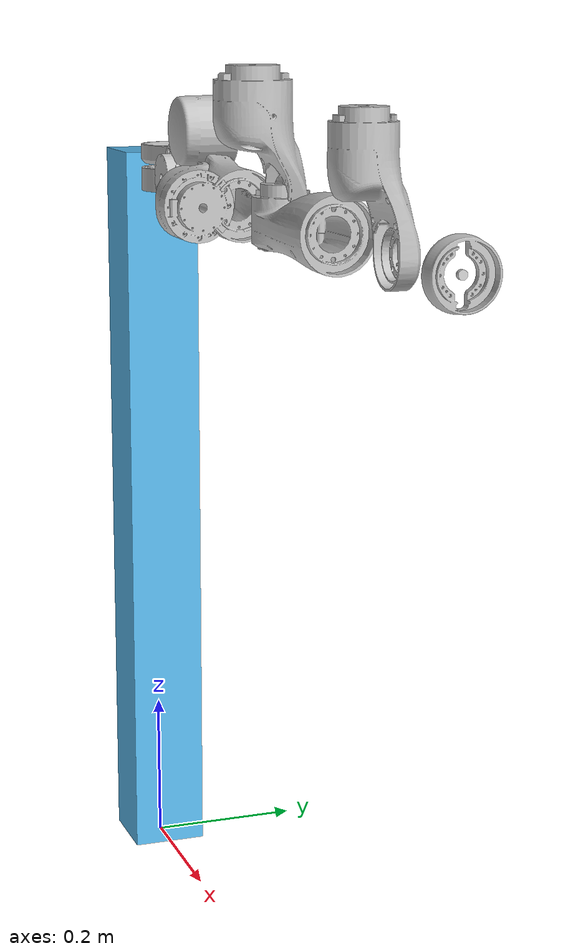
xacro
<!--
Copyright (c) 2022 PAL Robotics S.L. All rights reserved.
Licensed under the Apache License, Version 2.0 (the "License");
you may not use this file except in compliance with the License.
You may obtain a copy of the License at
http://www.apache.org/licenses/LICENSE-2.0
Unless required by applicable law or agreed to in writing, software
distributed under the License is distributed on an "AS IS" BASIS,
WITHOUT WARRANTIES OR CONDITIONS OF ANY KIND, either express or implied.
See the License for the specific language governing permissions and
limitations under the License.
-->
<?xml version="1.0" encoding="UTF-8"?>

<robot xmlns:xacro="http://ros.org/wiki/xacro" name="tiago_sea_arm">
  <xacro:include filename="$(find tiago_sea_arm_description)/urdf/arm/arm.urdf.xacro"/>
  <xacro:include filename="$(find tiago_sea_arm_description)/urdf/end_effector/end_effector.urdf.xacro"/>
  <xacro:include filename="$(find tiago_sea_arm_description)/urdf/sensors/ft_sensor.urdf.xacro" />
  <!-- Materials for visualization -->
  <xacro:include filename="$(find tiago_sea_arm_description)/urdf/materials.urdf.xacro" />

  <xacro:arg name="end_effector" default="false"/>
  <xacro:arg name="ft_sensor" default="false"/>
  <xacro:property name="end_effector" value="$(arg end_effector)" />
  <xacro:property name="ft_sensor" value="$(arg ft_sensor)" />

  <xacro:if value="${end_effector not in ['false', False, 'pal-pro-gripper']}">
    <xacro:wrong_end_effector/>
  </xacro:if>
  <xacro:if value="${ft_sensor not in ['false', False, 'rokubi']}">
    <xacro:wrong_ft_sensor/>
  </xacro:if>

  <xacro:property name="has_ft_sensor"           value="${ft_sensor in ['rokubi']}"/>
  <xacro:property name="has_end_effector"        value="${end_effector not in ['false', False, 'no-ee']}"/>
  <xacro:property name="end_effector_link"       value="${'arm_ft_tool_link' if has_ft_sensor else 'arm_tool_link'}"/>

  <link name="world"/>

  <joint name="world_fixed" type="fixed">
      <origin xyz="0 0 0" rpy="0 0 0"/>
      <parent link="world"/>
      <child link="arm_root_link"/>
  </joint>

  <link name="arm_root_link">
      <visual>
          <origin xyz="0 0 0.5" rpy="0 0 0"/>
          <geometry>
              <box size="0.1 0.1 1.0"/>
          </geometry>
      </visual>
      <collision>
          <origin xyz="0 0 0.5" rpy="0 0 0"/>
          <geometry>
              <box size="0.1 0.1 1.0"/>
          </geometry>
      </collision>
      <inertial>
          <mass value="1e2" />
          <origin xyz="0.0 0.0 0.0" />
          <inertia ixx = "0.000001" ixy = "0.000000" ixz = "0.000000"
                   iyx = "0.000000" iyy = "0.000001" iyz = "0.000000"
                   izx = "0.000000" izy = "0.000000" izz = "0.000001" />
      </inertial>
  </link>

  <!-- Generic simulator_gazebo plugins -->
  <xacro:include filename="$(find tiago_sea_arm_description)/gazebo/gazebo.urdf.xacro" />

  <xacro:property name="joint_limit_folder" value="tiago_sea_arm_description"/>

  <!-- ARM -->
  <xacro:tiago_sea_arm name="arm" parent="arm_root_link" reflect="1" ft_sensor="${ft_sensor}" arm_1_offset="0" arm_2_offset="0" arm_3_offset="0" arm_4_offset="0" arm_5_offset="0" arm_6_offset="0" arm_7_offset="0" joint_limit_folder="${joint_limit_folder}">
          <origin xyz="0.11 0 1.0" rpy="0 0 0"/>
  </xacro:tiago_sea_arm>

  <xacro:tiago_sea_arm_end_effector name="gripper" parent="${end_effector_link}" type="${end_effector}" has_end_effector="${has_end_effector}" reflect="1"/>

  <xacro:if value="${has_ft_sensor}">
    <xacro:ft_sensor name="arm" parent="arm_tool_link"/>
  </xacro:if>

</robot>

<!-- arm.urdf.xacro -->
<robot xmlns:xacro="http://ros.org/wiki/xacro">

  <!-- File includes -->
  <xacro:include filename="$(find tiago_sea_arm_description)/urdf/deg_to_rad.xacro" />
  <xacro:include filename="$(find tiago_sea_arm_description)/urdf/arm/arm.transmission.xacro" />
  <xacro:include filename="$(find tiago_sea_arm_description)/urdf/arm/arm.limits.xacro" />
  <xacro:include filename="$(find tiago_sea_arm_description)/urdf/calibration_constants.urdf.xacro" />
  <!-- Constants -->

  <!-- ARM MACRO -->
  <!-- reflect: Set to 1 for a right arm, or to -1 for a left arm -->
  <xacro:macro name="tiago_sea_arm"
    params="name parent *origin reflect ft_sensor arm_1_offset arm_2_offset arm_3_offset arm_4_offset arm_5_offset arm_6_offset arm_7_offset no_safety_eps:=False joint_limit_folder:=tiago_sea_arm_description" >
    <xacro:property name="arm_eps" value="${0.00 if no_safety_eps else 0.07}" />

    <!-- TODO -->
    <!-- If joint limits between left and right arm will differ a change has to be made -->
    <xacro:include filename="$(find ${joint_limit_folder})/urdf/arm/arm.limits.xacro" />

    <!-- BASE LINK -->
    <link name="${name}_base_link">
      <inertial>
        <origin xyz="3.2799E-03 -3.2628E-04 -0.0322" rpy="0 0 0" />
        <mass value="0.8021" />
        <inertia
          ixx="5.3024E-04" ixy="-5.9227E-06" ixz="-1.0828E-06"
          iyy="5.5663E-04" iyz="-5.7113E-06"
          izz="6.8971E-04" />
      </inertial>
      <visual>
        <origin xyz="0 0 0" rpy="0 0 0" />
        <geometry>
          <mesh filename="package://tiago_sea_arm_description/meshes/base_link.STL" />
        </geometry>
        <material name="">
          <color rgba="0.75294 0.75294 0.75294 1" />
        </material>
      </visual>
      <collision>
        <origin xyz="0 0 0" rpy="0 0 0" />
        <geometry>
          <mesh filename="package://tiago_sea_arm_description/meshes/base_link.STL" />
        </geometry>
      </collision>
    </link>

    <joint name="${name}_base_joint" type="fixed">
      <xacro:insert_block name="origin" />
      <parent link="${parent}" />
      <child link="${name}_base_link" />
    </joint>

    <!-- Arm link macro -->
    <link name="${name}_1_link">
      <inertial>
        <origin xyz="0.1082 0.0106 ${0.0328 * reflect}" rpy="0 0 0" />
        <mass value="1.0267" />
      <inertia
        ixx="8.0603E-04" ixy="-8.52034E-05" ixz="${-3.0124E-04 * reflect}"
        iyy="1.9301E-03" iyz="${1.9426E-05 * reflect}"
        izz="1.8484E-03" />
      </inertial>
      <visual>
        <origin xyz="0 0 0" rpy="0 0 0" />
        <geometry>
          <mesh filename="package://tiago_sea_arm_description/meshes/arm/arm_1_link.STL"
            scale="1 1 ${reflect}" />
        </geometry>
        <material
          name="">
          <color
            rgba="0.752941176470588 0.752941176470588 0.752941176470588 1" />
        </material>
      </visual>
      <collision>
        <origin xyz="0 0 0" rpy="0 0 0" />
        <geometry>
          <mesh
            filename="package://tiago_sea_arm_description/meshes/arm/arm_1_link_convex.STL"
            scale="1 1 ${reflect}" />
        </geometry>
      </collision>
    </link>

    <joint name="${name}_1_joint" type="revolute">
      <origin xyz="0.0 0.0 0.0" rpy=" ${(90 + 90 * reflect) * deg_to_rad } 0 0" />
      <parent link="${name}_base_link" />
      <child link="${name}_1_link" />
      <axis xyz="0 0 ${1}" />
      <limit lower="${arm_1_joint_lb * deg_to_rad}" upper="${arm_1_joint_ub * deg_to_rad}" effort="${arm_1_max_effort}" velocity="${arm_1_max_velocity}" />
      <dynamics friction="${arm_friction}" damping="${arm_damping}"/>
      <safety_controller k_position="${arm_k_position}" k_velocity="${arm_k_velocity}" soft_lower_limit="${arm_1_joint_lb * deg_to_rad  + arm_eps}"
        soft_upper_limit="${arm_1_joint_ub * deg_to_rad - arm_eps}" />
    </joint>

    <link name="${name}_2_link">
      <inertial>
        <origin xyz="-0.0941 2.6612E-04  ${0.0414 * reflect}" rpy="0 0 0" />
        <mass value="0.9496" />
        <inertia
          ixx="8.4202E-04" ixy="-5.7830E-06" ixz="${2.6145E-04 * reflect}"
          iyy="1.4185E-03" iyz="${-5.8148E-06 * reflect}"
          izz="1.4729E-03" />
      </inertial>
      <visual>
        <origin xyz="0 0 0" rpy="0 0 0" />
        <geometry>
          <mesh filename="package://tiago_sea_arm_description/meshes/arm/arm_2_link.STL"
            scale="1 1 ${reflect}" />
        </geometry>
        <material
          name="">
          <color
            rgba="0.752941176470588 0.752941176470588 0.752941176470588 1" />
        </material>
      </visual>
      <collision>
        <origin xyz="0 0 0" rpy="0 0 0" />
        <geometry>
          <mesh
            filename="package://tiago_sea_arm_description/meshes/arm/arm_2_link_convex.STL"
            scale="1 1 ${reflect}" />
        </geometry>
      </collision>
    </link>

    <joint name="${name}_2_joint" type="revolute">
      <origin xyz="0.13 0.0483 ${0.04* reflect}"
        rpy="${-90 * reflect * deg_to_rad} 0 ${180 * deg_to_rad}" />
      <parent link="${name}_1_link" />
      <child link="${name}_2_link" />
      <axis xyz="0 0 1" />
      <limit lower="${arm_2_joint_lb * deg_to_rad}" upper="${arm_2_joint_ub * deg_to_rad}" effort="${arm_2_max_effort}" velocity="${arm_2_max_velocity}" />
      <dynamics friction="${arm_friction}" damping="${arm_damping}"/>
      <safety_controller k_position="${arm_k_position}" k_velocity="${arm_k_velocity}" soft_lower_limit="${arm_2_joint_lb * deg_to_rad  + arm_eps}"
        soft_upper_limit="${arm_2_joint_ub * deg_to_rad - arm_eps}" />
    </joint>

    <link name="${name}_3_link">
      <inertial>
        <origin xyz="0.0121 0.0151 ${-0.1344 * reflect}"
          rpy="0 0 0" />
        <mass value="1.0676" />
        <inertia
          ixx="2.4587E-03" ixy="-1.2107E-05" ixz="${2.1354E-04 * reflect}"
          iyy="2.7652E-03" iyz="${6.0550E-05 * reflect}"
          izz="9.3005E-04" />
      </inertial>
      <visual>
        <origin xyz="0 0 0" rpy="0 0 0" />
        <geometry>
          <mesh filename="package://tiago_sea_arm_description/meshes/arm/arm_3_link.STL"
            scale="1 1 ${reflect}" />
        </geometry>
        <material
          name="">
          <color
            rgba="0.752941176470588 0.752941176470588 0.752941176470588 1" />
        </material>
      </visual>
      <collision>
        <origin xyz="0 0 0" rpy="0 0 0" />
        <geometry>
          <mesh
            filename="package://tiago_sea_arm_description/meshes/arm/arm_3_link_convex.STL"
            scale="1 1 ${reflect}" />
        </geometry>
      </collision>
    </link>

    <joint name="${name}_3_joint" type="revolute">
     <origin xyz="-0.1549 0 ${0.05 * reflect}"
        rpy="0 ${90 * reflect * deg_to_rad} 0" />
      <parent link="${name}_2_link" />
      <child
        link="${name}_3_link" />
      <axis xyz="0 0 1" />
      <limit lower="${arm_3_joint_lb * deg_to_rad}" upper="${arm_3_joint_ub * deg_to_rad}"
        effort="${arm_3_max_effort}" velocity="${arm_3_max_velocity}" />
       <dynamics friction="${arm_friction}" damping="${arm_damping}"/>
      <safety_controller k_position="${arm_k_position}" k_velocity="${arm_k_velocity}"
        soft_lower_limit="${arm_3_joint_lb * deg_to_rad  + arm_eps}"
        soft_upper_limit="${arm_3_joint_ub * deg_to_rad - arm_eps}" />
    </joint>

    <link name="${name}_4_link">
      <inertial>
        <origin xyz="0.018 -0.1025 ${0.0419 * reflect}" rpy="0 0 0" />
        <mass value="0.9494" />
      <inertia
        ixx="1.3967E-03" ixy="1.0609E-04" ixz="${-4.2876E-05 * reflect}"
        iyy="8.5657E-04" iyz="${2.5436E-04 * reflect}"
        izz="1.4862E-03" />
      </inertial>
      <visual>
        <origin xyz="0 0 0" rpy="0 0 0" />
        <geometry>
          <mesh filename="package://tiago_sea_arm_description/meshes/arm/arm_4_link.STL"
            scale="1 1 ${reflect}" />
        </geometry>
        <material
          name="">
          <color
            rgba="0.752941176470588 0.752941176470588 0.752941176470588 1" />
        </material>
      </visual>
      <collision>
        <origin xyz="0 0 0" rpy="0 0 0" />
        <geometry>
          <mesh
            filename="package://tiago_sea_arm_description/meshes/arm/arm_4_link_convex.STL"
            scale="1 1 ${reflect}" />
        </geometry>
      </collision>
    </link>

    <joint name="${name}_4_joint" type="revolute">
     <origin xyz="0.05 0.02 ${-0.1651 * reflect}"
        rpy="${90 * reflect * deg_to_rad} ${-0 * reflect * deg_to_rad} ${-90 * deg_to_rad}" />
      <parent
        link="${name}_3_link" />
      <child link="${name}_4_link" />
      <axis xyz="0 0 1" />
      <limit
        lower="${arm_4_joint_lb * deg_to_rad}" upper="${arm_4_joint_ub * deg_to_rad}" effort="${arm_4_max_effort}" velocity="${arm_4_max_velocity}" />
       <dynamics friction="${arm_friction}" damping="${arm_damping}"/>

      <safety_controller
        k_position="${arm_k_position}" k_velocity="${arm_k_velocity}" soft_lower_limit="${arm_4_joint_lb * deg_to_rad  + arm_eps}"
        soft_upper_limit="${arm_4_joint_ub * deg_to_rad - arm_eps}" />
    </joint>

    <link name="${name}_5_link">
      <inertial>
        <origin xyz="2.5984E-03 0 ${-0.1278 * reflect}" rpy="0 0 0" />
        <mass value="0.7489" />
        <inertia
          ixx="1.9033E-03" ixy="-4.8338E-07" ixz="${1.5833E-06 * reflect}"
          iyy="1.9678E-03" iyz="${-2.6173E-05 * reflect}"
          izz="7.0997E-04" />
      </inertial>
      <visual>
        <origin xyz="0 0 0" rpy="0 0 0" />
        <geometry>
          <mesh filename="package://tiago_sea_arm_description/meshes/arm/arm_5_link.STL"
            scale="1 1 ${reflect}" />
        </geometry>
        <material
          name="">
          <color
            rgba="0.752941176470588 0.752941176470588 0.752941176470588 1" />
        </material>
      </visual>
      <collision>
        <origin xyz="0 0 0" rpy="0 0 0" />
        <geometry>
          <mesh
            filename="package://tiago_sea_arm_description/meshes/arm/arm_5_link_convex.STL"
            scale="1 1 ${reflect}" />
        </geometry>
      </collision>
    </link>

    <joint name="${name}_5_joint" type="revolute">
     <origin xyz="0.02 -0.1546 ${0.05 * reflect}"
        rpy="${90 * reflect * deg_to_rad} 0 ${180 * deg_to_rad}" />
      <parent link="${name}_4_link" />
      <child
        link="${name}_5_link" />
      <axis xyz="0 0 1" />
      <limit
        lower="${arm_5_joint_lb * deg_to_rad}" upper="${arm_5_joint_ub * deg_to_rad}" effort="${arm_5_max_effort}" velocity="${arm_5_max_velocity}" />
       <dynamics friction="${arm_friction}" damping="${arm_damping}"/>

      <safety_controller
        k_position="${arm_k_position}" k_velocity="${arm_k_velocity}" soft_lower_limit="${arm_5_joint_lb * deg_to_rad  + arm_eps}"
        soft_upper_limit="${arm_5_joint_ub * deg_to_rad - arm_eps}" />
    </joint>

    <link name="${name}_6_link">
      <inertial>
        <origin xyz="0 -0.0939 ${0.0329 * reflect}" rpy="0 0 0" />
        <mass value="0.7078" />
        <inertia
          ixx="8.7604E-04" ixy="1.8688E-07" ixz="${1.8174E-07 * reflect}"
          iyy="4.0580E-04" iyz="${1.3224E-04 * reflect}"
          izz="9.0318E-04" />
      </inertial>
      <visual>
        <origin xyz="0 0 0" rpy="0 0 0" />
        <geometry>
          <mesh filename="package://tiago_sea_arm_description/meshes/arm/arm_6_link.STL"
            scale="1 1 ${reflect}" />
        </geometry>
        <material
          name="">
          <color
            rgba="0.752941176470588 0.752941176470588 0.752941176470588 1" />
        </material>
      </visual>
      <collision>
        <origin xyz="0 0 0" rpy="0 0 0" />
        <geometry>
          <mesh
            filename="package://tiago_sea_arm_description/meshes/arm/arm_6_link_convex.STL"
            scale="1 1 ${reflect}" />
        </geometry>
      </collision>
    </link>

    <joint name="${name}_6_joint" type="revolute">
     <origin xyz="0 -0.0395 ${-0.1651 * reflect}"
        rpy="${90 * reflect * deg_to_rad} 0 ${180 * deg_to_rad}" />
      <parent link="${name}_5_link" />
      <child
        link="${name}_6_link" />
      <axis xyz="0 0 1" />
      <limit
        lower="${arm_6_joint_lb * deg_to_rad}" upper="${arm_6_joint_ub * deg_to_rad}" effort="${arm_6_max_effort}" velocity="${arm_6_max_velocity}" />
       <dynamics friction="${arm_friction}" damping="${arm_damping}"/>

      <safety_controller
        k_position="${arm_k_position}" k_velocity="${arm_k_velocity}" soft_lower_limit="${arm_6_joint_lb * deg_to_rad  + arm_eps}"
        soft_upper_limit="${arm_6_joint_ub * deg_to_rad - arm_eps}" />
    </joint>

    <link name="${name}_7_link">
      <inertial>
        <origin xyz="0 0 0" rpy="0 0 0" />
        <mass value="0.0933" />
        <inertia
          ixx="5.0821E-05" ixy="2.1963E-09" ixz="${-2.9579E-20 * reflect}"
          iyy="4.4927E-05" iyz="${-2.9712E-19 * reflect}"
          izz="9.1085E-05" />
      </inertial>
      <visual>
        <origin xyz="0 0 0" rpy="0 0 0" />
        <geometry>
          <mesh filename="package://tiago_sea_arm_description/meshes/arm/arm_7_link.STL"
            scale="1 1 ${reflect}" />
        </geometry>
        <material
          name="">
          <color
            rgba="0.752941176470588 0.752941176470588 0.752941176470588 1" />
        </material>
      </visual>
      <collision>
        <origin xyz="0 0 0" rpy="0 0 0" />
        <geometry>
          <mesh
            filename="package://tiago_sea_arm_description/meshes/arm/arm_7_link_convex.STL"
            scale="1 1 ${reflect}" />
        </geometry>
      </collision>
    </link>

    <joint name="${name}_7_joint" type="revolute">
     <origin xyz="0 -0.146 ${0.039 * reflect}"
        rpy="${-90 * reflect * deg_to_rad} 0 0" />

      <parent link="${name}_6_link" />
      <child
        link="${name}_7_link" />
      <axis xyz="0 0 1" />
      <limit
        lower="${arm_7_joint_lb * deg_to_rad}" upper="${arm_7_joint_ub * deg_to_rad}" effort="${arm_7_max_effort}" velocity="${arm_7_max_velocity}" />
       <dynamics friction="${arm_friction}" damping="${arm_damping}"/>

      <safety_controller
        k_position="${arm_k_position}" k_velocity="${arm_k_velocity}" soft_lower_limit="${arm_7_joint_lb * deg_to_rad  + arm_eps}"
        soft_upper_limit="${arm_7_joint_ub * deg_to_rad - arm_eps}" />
    </joint>

    <!--        TOOL           -->
    <link name="${name}_tool_link">
      <inertial>
        <mass value="0.1" />
        <inertia ixx="8.33E-07" ixy="0.0" ixz="0.0" iyy="8.33E-07" iyz="0.0" izz="1.25E-06" />
      </inertial>
      <visual>
        <origin xyz="0.001 0 0" rpy="0 ${90.0 * deg_to_rad} 0" />
        <geometry>
          <cylinder radius="0.005" length="0.005"/>
        </geometry>
        <material name="LightGrey" />
      </visual>
      <collision>
        <origin xyz="0.001 0 0" rpy="0 ${90.0 * deg_to_rad} 0" />
        <geometry>
          <cylinder radius="0.005" length="0.005"/>
        </geometry>
      </collision>
    </link>

    <joint name="${name}_tool_joint" type="fixed">
      <parent link="${name}_7_link" />
      <child link="${name}_tool_link" />
      <origin xyz="0 0 0" rpy="${0.0 * deg_to_rad} ${90.0 * reflect * deg_to_rad} ${0 * deg_to_rad}" />
    </joint>

   <gazebo reference="${name}_1_link">
     <mu1>0.9</mu1>
     <mu2>0.9</mu2>
     <material>Gazebo/DarkGrey</material>
   </gazebo>
   <gazebo reference="${name}_2_link">
     <mu1>0.9</mu1>
     <mu2>0.9</mu2>
     <material>Gazebo/DarkGrey</material>
   </gazebo>
   <gazebo reference="${name}_3_link">
     <mu1>0.9</mu1>
     <mu2>0.9</mu2>
     <material>Gazebo/DarkGrey</material>
   </gazebo>
   <gazebo reference="${name}_4_link">
     <mu1>0.9</mu1>
     <mu2>0.9</mu2>
     <material>Gazebo/DarkGrey</material>
   </gazebo>
    <gazebo reference="${name}_5_link">
     <mu1>0.9</mu1>
     <mu2>0.9</mu2>
     <material>Gazebo/DarkGrey</material>
   </gazebo>
    <gazebo reference="${name}_6_link">
     <mu1>0.9</mu1>
     <mu2>0.9</mu2>
     <material>Gazebo/DarkGrey</material>
   </gazebo>
    <gazebo reference="${name}_7_link">
     <mu1>0.9</mu1>
     <mu2>0.9</mu2>
     <material>Gazebo/DarkGrey</material>
   </gazebo>

   <gazebo reference="${name}_1_joint">
      <implicitSpringDamper>1</implicitSpringDamper>
   </gazebo>
   <gazebo reference="${name}_2_joint">
      <implicitSpringDamper>1</implicitSpringDamper>
   </gazebo>
   <gazebo reference="${name}_3_joint">
      <implicitSpringDamper>1</implicitSpringDamper>
   </gazebo>
   <gazebo reference="${name}_4_joint">
      <implicitSpringDamper>1</implicitSpringDamper>
   </gazebo>
   <gazebo reference="${name}_5_joint">
      <implicitSpringDamper>1</implicitSpringDamper>
   </gazebo>
   <gazebo reference="${name}_6_joint">
      <implicitSpringDamper>1</implicitSpringDamper>
   </gazebo>
   <gazebo reference="${name}_7_joint">
      <implicitSpringDamper>1</implicitSpringDamper>
   </gazebo>

    <xacro:arm_simple_transmission name="${name}" number="1" reduction="1.0" offset_value="${arm_1_offset}"/>
    <xacro:arm_simple_transmission name="${name}" number="2" reduction="1.0" offset_value="${arm_2_offset}"/>
    <xacro:arm_simple_transmission name="${name}" number="3" reduction="1.0" offset_value="${arm_3_offset}"/>
    <xacro:arm_simple_transmission name="${name}" number="4" reduction="1.0" offset_value="${arm_4_offset}"/>
    <xacro:arm_simple_transmission name="${name}" number="5" reduction="1.0" offset_value="${arm_4_offset}"/>
    <xacro:arm_simple_transmission name="${name}" number="6" reduction="1.0" offset_value="${arm_4_offset}"/>
    <xacro:arm_simple_transmission name="${name}" number="7" reduction="1.0" offset_value="${arm_4_offset}"/>

  </xacro:macro>

</robot>

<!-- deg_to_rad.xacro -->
<robot xmlns:xacro="http://ros.org/wiki/xacro">
  <xacro:property name="deg_to_rad" value="0.01745329251994329577" />
</robot>

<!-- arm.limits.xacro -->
<robot xmlns:xacro="http://ros.org/wiki/xacro">

  <!--Constant parameters-->
  <xacro:property name="arm_friction"       value="1.0" />
  <xacro:property name="arm_damping"        value="1.0" />

  <xacro:property name="arm_k_position" value="20"/>
  <xacro:property name="arm_k_velocity" value="20"/>

  <!-- TODO: Check these values -->

  <xacro:property name="arm_1_joint_ub" value="90"/>
  <xacro:property name="arm_1_joint_lb" value="-90"/>

  <xacro:property name="arm_2_joint_ub" value="62.5"/>
  <xacro:property name="arm_2_joint_lb" value="-90"/>

  <xacro:property name="arm_3_joint_ub" value="170"/>
  <xacro:property name="arm_3_joint_lb" value="-170"/>

  <xacro:property name="arm_4_joint_ub" value="90" />
  <xacro:property name="arm_4_joint_lb" value="-140" />

  <xacro:property name="arm_5_joint_ub" value="145" />
  <xacro:property name="arm_5_joint_lb" value="-145" />

  <xacro:property name="arm_6_joint_ub" value="114" />
  <xacro:property name="arm_6_joint_lb" value="-114" />

  <xacro:property name="arm_7_joint_ub" value="145" />
  <xacro:property name="arm_7_joint_lb" value="-145" />

  <xacro:property name="arm_1_max_velocity"      value="1.95" />
  <xacro:property name="arm_2_max_velocity"      value="1.95" />
  <xacro:property name="arm_3_max_velocity"      value="1.95" />
  <xacro:property name="arm_4_max_velocity"      value="1.95" />
  <xacro:property name="arm_5_max_velocity"      value="1.95" />
  <xacro:property name="arm_6_max_velocity"      value="1.95" />
  <xacro:property name="arm_7_max_velocity"      value="1.95" />

  <xacro:property name="arm_1_max_effort"   value="50" />
  <xacro:property name="arm_2_max_effort"   value="50" />
  <xacro:property name="arm_3_max_effort"   value="50" />
  <xacro:property name="arm_4_max_effort"   value="50" />
  <xacro:property name="arm_5_max_effort"   value="50" />
  <xacro:property name="arm_6_max_effort"   value="50" />
  <xacro:property name="arm_7_max_effort"   value="50" />

</robot>
